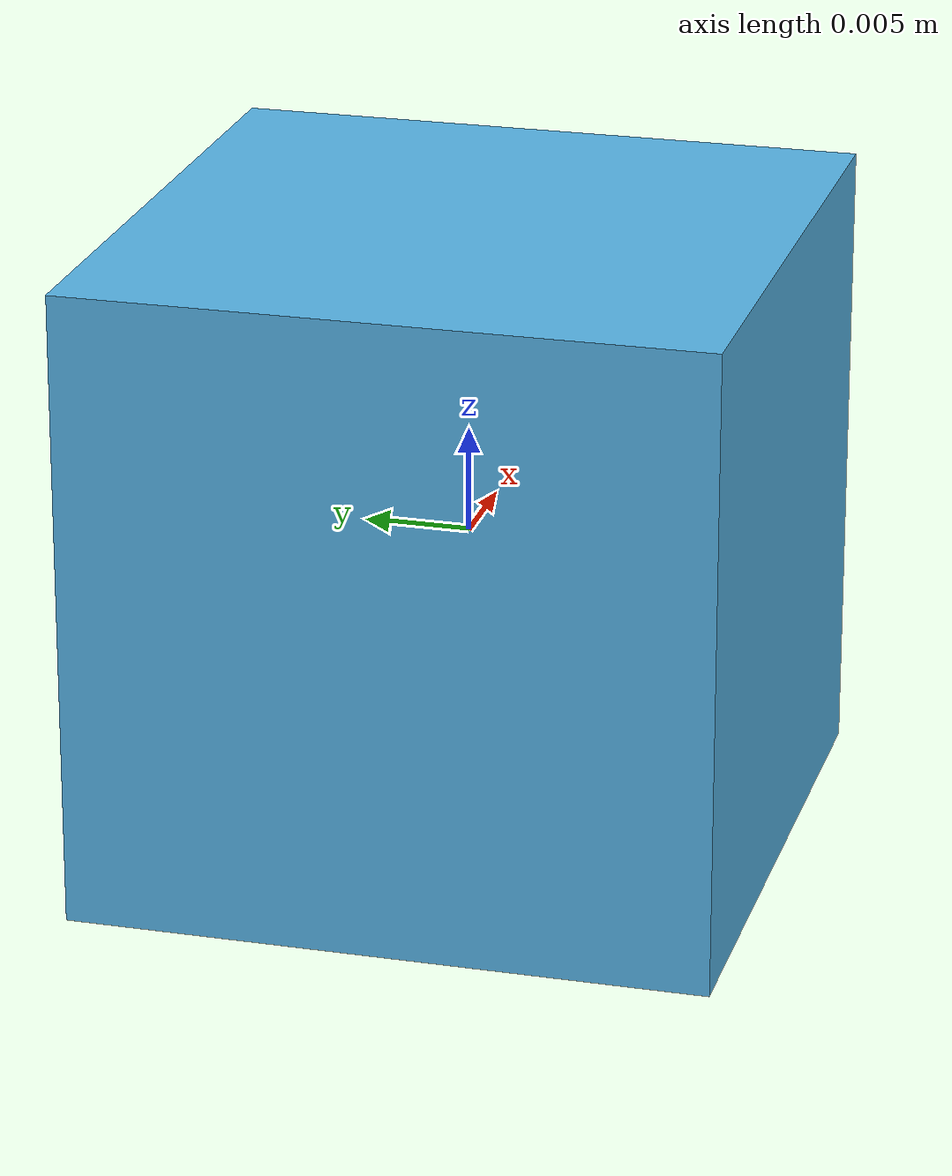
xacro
<?xml version="1.0"?>
<robot name="camera" xmlns:xacro="http://www.ros.org/wiki/xacro">
 <xacro:property name="pi" value="3.1415926535897931"/>

    <link name="world"/>
    <joint name="fix" type="fixed">
        <parent link="world"/>
        <child link="camera_link"/>
        <origin xyz="0 0 0" rpy="0 0 ${pi/2}"/>
    </joint>

        <link name="camera_link">
            <collision>
                <origin xyz="0 0 0" rpy="0 0 0"/>
                <geometry>
                    <box size="0.03 0.03 0.03"/>
                </geometry>
            </collision>
            <visual>
                <origin xyz="0 0 0" rpy="0 0 0"/>
                <geometry>
                    <box size="0.03 0.03 0.03"/>
                </geometry>
            </visual>
            <inertial>
                <mass value="1"/>
                <origin xyz="0 0 0" rpy="0 0 0"/>
                <inertia ixx="0.0000001" ixy="0" ixz="0" iyy="0.0000001" iyz="0" izz="0.0000001"/>
            </inertial>
        </link>

        <gazebo reference="camera_link">
            <sensor type="camera" name="camera_view">
                <update_rate>30.0</update_rate>
                <visualize>true</visualize>

                <camera name="viewer">
                    <horizontal_fov>${pi/180*18.92}</horizontal_fov>

                    <image>
                        <width>800</width>
                        <height>600</height>
                        <format>R8G8B8</format>
                    </image>

                    <clip>
                        <near>0.02</near>
                        <far>100</far>
                    </clip>

                    <noise>
                        <type>gaussian</type>
                        <mean>0.00</mean>
                        <stddev>0.007</stddev>
                    </noise>
                </camera>

                <plugin name="camera_controller" filename = "libgazebo_ros_camera.so"><!--filename="libgazebo_ros_openni_kinect.so">-->
                    <robotNamespace>camera</robotNamespace>
                    <alwaysOn>true</alwaysOn>
                    <updateRate>0.0</updateRate>

                    <cameraName>camera_viewer</cameraName>

                    <linkName>camera_link</linkName>
                    <imageTopicName>image_raw</imageTopicName>
                    <cameraInfoTopicName>camera_info</cameraInfoTopicName>
                    <frameName>camera_link</frameName>
                    <hackBaseline>0.07</hackBaseline>
                    <distortionK1>0.001</distortionK1>
                    <distortionK2>0.0001</distortionK2>
                    <distortionK3>0.0</distortionK3>
                    <distortionT1>0.0002</distortionT1>
                    <distortionT2>0.0</distortionT2>
                </plugin>
            </sensor>
        </gazebo>

</robot>
